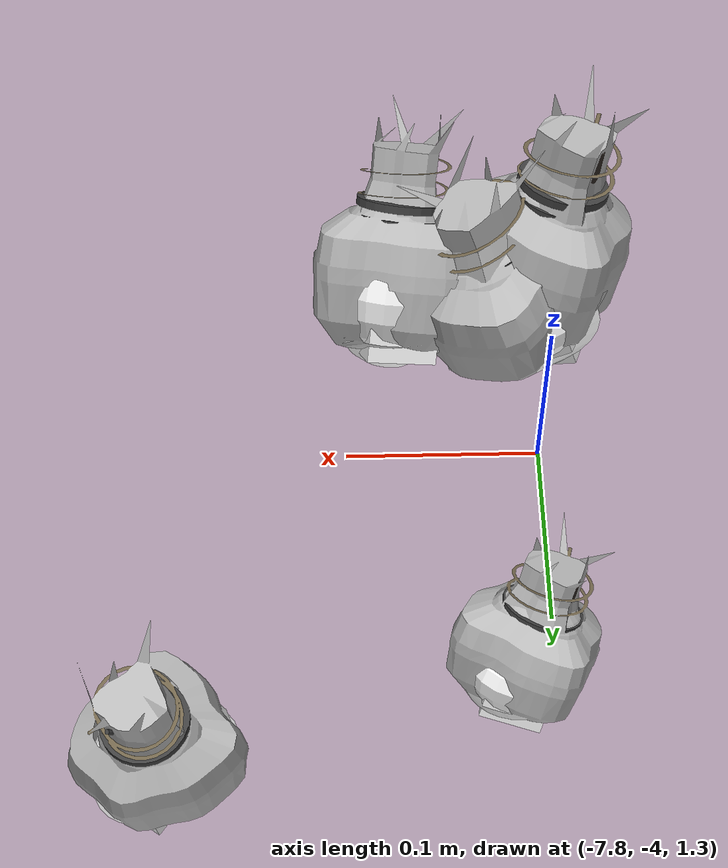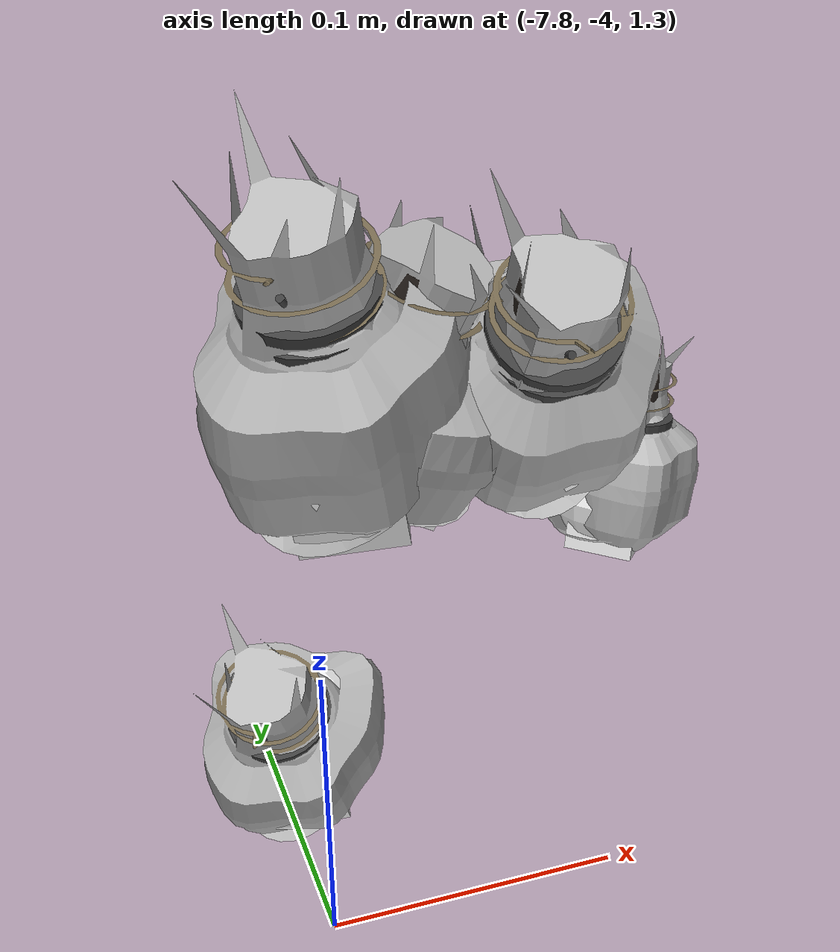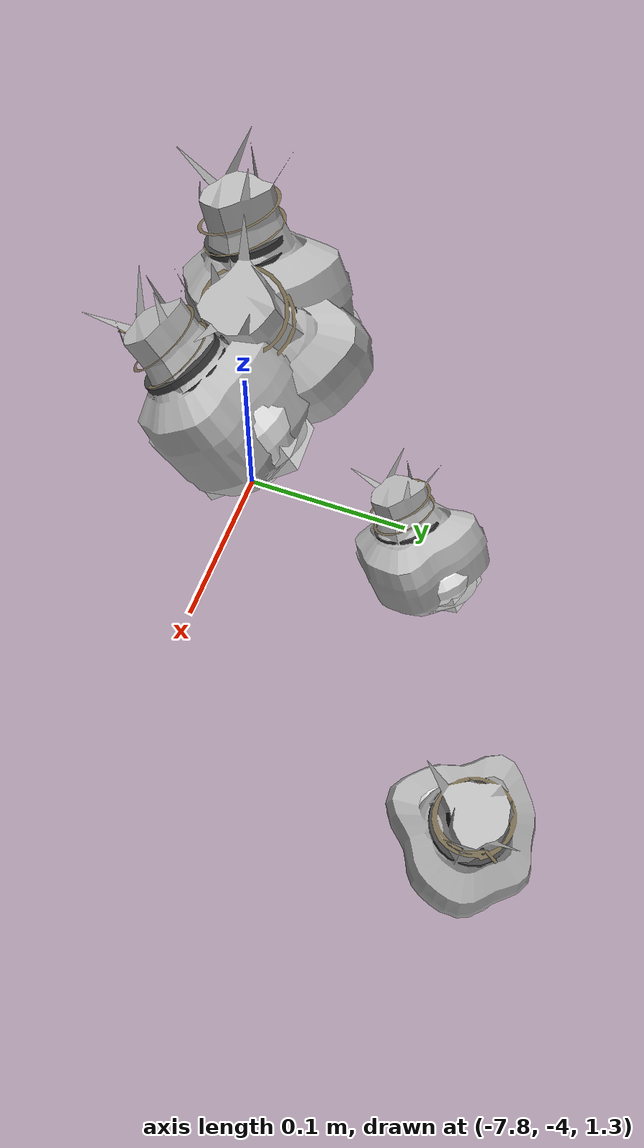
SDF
<sdf version="1.11">
 <world name="peach_orchard">
  <model name="ground">
   <static>true</static>
   <link name="link">
    <visual name="soil">
     <geometry><plane><normal>0 0 1</normal><size>32 22</size></plane></geometry>
     <material>
      <ambient>1 1 1 1</ambient>
      <diffuse>1 1 1 1</diffuse>
      <specular>0.1 0.1 0.1 1</specular>
      <pbr>
       <metal>
        <albedo_map>textures/soil_albedo.png</albedo_map>
        <normal_map type="tangent">textures/soil_normal.png</normal_map>
        <roughness>0.95</roughness>
        <metalness>0</metalness>
       </metal>
      </pbr>
     </material>
    </visual>
    <collision name="c_soil">
     <geometry><plane><normal>0 0 1</normal><size>32 22</size></plane></geometry>
    </collision>
   </link>
  </model>
  <model name="peach_tree_r0_t1_02">
   <pose>-7.61461 -3.8122 1.31483 0 0.154217 0.551246</pose>
   <static>true</static>
   <link name="bag">
    <visual name="bag_mesh">
     <pose>0 0 0.0423351 0 0 0</pose>
     <geometry>
      <mesh><uri>model://peach_sim/meshes/bagged_peach.glb</uri><scale>0.947025 1.03277 0.962162</scale></mesh>
     </geometry>
    </visual>
    <visual name="body">
     <pose>0 0 0.0243351 0 0 0</pose>
     <geometry><ellipsoid><radii>0.0355134 0.0268521 0.026282</radii></ellipsoid></geometry>
     <material>
      <ambient>1 1 1 1</ambient>
      <diffuse>1 1 1 1</diffuse>
      <specular>0.1 0.1 0.1 1</specular>
      <pbr>
       <metal>
        <albedo_map>textures/paper_bag_albedo.png</albedo_map>
        <normal_map type="tangent">textures/paper_bag_normal.png</normal_map>
        <roughness>0.72</roughness>
        <metalness>0</metalness>
       </metal>
      </pbr>
     </material>
    </visual>
    <visual name="bottom_fold">
     <pose>0 0 0.012 0 0 0.35</pose>
     <geometry><box><size>0.0550458 0.0308799 0.022</size></box></geometry>
     <material>
      <ambient>1 1 1 1</ambient>
      <diffuse>1 1 1 1</diffuse>
      <specular>0.1 0.1 0.1 1</specular>
      <pbr>
       <metal>
        <albedo_map>textures/paper_bag_albedo.png</albedo_map>
        <normal_map type="tangent">textures/paper_bag_normal.png</normal_map>
        <roughness>0.8</roughness>
        <metalness>0</metalness>
       </metal>
      </pbr>
     </material>
    </visual>
    <visual name="fruit">
     <pose>0 0 0.0172455 0 0 0</pose>
     <geometry><sphere><radius>0.0241753</radius></sphere></geometry>
     <material>
      <ambient>1 1 1 1</ambient>
      <diffuse>1 1 1 1</diffuse>
      <specular>0.1 0.1 0.1 1</specular>
      <pbr>
       <metal>
        <albedo_map>textures/fruit_skin_albedo.png</albedo_map>
        <normal_map type="tangent">textures/fruit_skin_normal.png</normal_map>
        <roughness>0.55</roughness>
        <metalness>0</metalness>
       </metal>
      </pbr>
     </material>
    </visual>
    <visual name="neck">
     <pose>0 0 0.0576703 0 0 0</pose>
     <geometry><cylinder><radius>0.013</radius><length>0.018</length></cylinder></geometry>
     <material>
      <ambient>1 1 1 1</ambient>
      <diffuse>1 1 1 1</diffuse>
      <specular>0.1 0.1 0.1 1</specular>
      <pbr>
       <metal>
        <albedo_map>textures/paper_bag_albedo.png</albedo_map>
        <normal_map type="tangent">textures/paper_bag_normal.png</normal_map>
        <roughness>0.75</roughness>
        <metalness>0</metalness>
       </metal>
      </pbr>
     </material>
    </visual>
    <visual name="gather">
     <pose>0 0 0.0386703 0 0 0</pose>
     <geometry><cylinder><radius>0.019</radius><length>0.02</length></cylinder></geometry>
     <material>
      <ambient>1 1 1 1</ambient>
      <diffuse>1 1 1 1</diffuse>
      <specular>0.1 0.1 0.1 1</specular>
      <pbr>
       <metal>
        <albedo_map>textures/paper_bag_albedo.png</albedo_map>
        <normal_map type="tangent">textures/paper_bag_normal.png</normal_map>
        <roughness>0.8</roughness>
        <metalness>0</metalness>
       </metal>
      </pbr>
     </material>
    </visual>
    <visual name="inner_paper">
     <pose>0 0 0.0626703 0 0 0</pose>
     <geometry><cylinder><radius>0.01</radius><length>0.008</length></cylinder></geometry>
     <material>
      <ambient>0.180392 0.14902 0.133333 1</ambient>
      <diffuse>0.180392 0.14902 0.133333 1</diffuse>
      <specular>0.1 0.1 0.1 1</specular>
     </material>
    </visual>
    <visual name="wire_0">
     <pose>0 0 0.0526703 0 0 0</pose>
     <geometry><cylinder><radius>0.0205</radius><length>0.0035</length></cylinder></geometry>
     <material>
      <ambient>0.25 0.25 0.25 1</ambient>
      <diffuse>0.25 0.25 0.25 1</diffuse>
      <specular>0.1 0.1 0.1 1</specular>
     </material>
    </visual>
    <visual name="wire_1">
     <pose>0 0 0.0596703 0 0 0</pose>
     <geometry><cylinder><radius>0.0205</radius><length>0.0035</length></cylinder></geometry>
     <material>
      <ambient>0.25 0.25 0.25 1</ambient>
      <diffuse>0.25 0.25 0.25 1</diffuse>
      <specular>0.1 0.1 0.1 1</specular>
     </material>
    </visual>
    <visual name="wire_tail">
     <pose>0.01 0 0.0606703 0 0.521618 0</pose>
     <geometry><cylinder><radius>0.0012</radius><length>0.026</length></cylinder></geometry>
     <material>
      <ambient>0.25 0.25 0.25 1</ambient>
      <diffuse>0.25 0.25 0.25 1</diffuse>
      <specular>0.1 0.1 0.1 1</specular>
     </material>
    </visual>
    <collision name="c_body">
     <pose>0 0 0.0243351 0 0 0</pose>
     <geometry><cylinder><radius>0.0355134</radius><length>0.0486703</length></cylinder></geometry>
    </collision>
   </link>
  </model>
  <model name="peach_tree_r0_t1_04">
   <pose>-7.78 -3.9591 1.45 0 0.428255 -0.6571</pose>
   <static>true</static>
   <link name="bag">
    <visual name="bag_mesh">
     <pose>0 0 0.0392287 0 0 -0</pose>
     <geometry>
      <mesh><uri>model://peach_sim/meshes/bagged_peach.glb</uri><scale>1.05888 1.28388 0.891562</scale></mesh>
     </geometry>
    </visual>
    <visual name="body">
     <pose>0 0 0.0212287 0 0 0</pose>
     <geometry><ellipsoid><radii>0.0397079 0.0333808 0.022927</radii></ellipsoid></geometry>
     <material>
      <ambient>1 1 1 1</ambient>
      <diffuse>1 1 1 1</diffuse>
      <specular>0.1 0.1 0.1 1</specular>
      <pbr>
       <metal>
        <albedo_map>textures/paper_bag_albedo.png</albedo_map>
        <normal_map type="tangent">textures/paper_bag_normal.png</normal_map>
        <roughness>0.72</roughness>
        <metalness>0</metalness>
       </metal>
      </pbr>
     </material>
    </visual>
    <visual name="bottom_fold">
     <pose>0 0 0.012 0 0 0.35</pose>
     <geometry><box><size>0.0615473 0.0383879 0.022</size></box></geometry>
     <material>
      <ambient>1 1 1 1</ambient>
      <diffuse>1 1 1 1</diffuse>
      <specular>0.1 0.1 0.1 1</specular>
      <pbr>
       <metal>
        <albedo_map>textures/paper_bag_albedo.png</albedo_map>
        <normal_map type="tangent">textures/paper_bag_normal.png</normal_map>
        <roughness>0.8</roughness>
        <metalness>0</metalness>
       </metal>
      </pbr>
     </material>
    </visual>
    <visual name="fruit">
     <pose>0 0 0.020392 0 0 0</pose>
     <geometry><sphere><radius>0.0274477</radius></sphere></geometry>
     <material>
      <ambient>1 1 1 1</ambient>
      <diffuse>1 1 1 1</diffuse>
      <specular>0.1 0.1 0.1 1</specular>
      <pbr>
       <metal>
        <albedo_map>textures/fruit_skin_albedo.png</albedo_map>
        <normal_map type="tangent">textures/fruit_skin_normal.png</normal_map>
        <roughness>0.55</roughness>
        <metalness>0</metalness>
       </metal>
      </pbr>
     </material>
    </visual>
    <visual name="neck">
     <pose>0 0 0.0514575 0 0 0</pose>
     <geometry><cylinder><radius>0.013</radius><length>0.018</length></cylinder></geometry>
     <material>
      <ambient>1 1 1 1</ambient>
      <diffuse>1 1 1 1</diffuse>
      <specular>0.1 0.1 0.1 1</specular>
      <pbr>
       <metal>
        <albedo_map>textures/paper_bag_albedo.png</albedo_map>
        <normal_map type="tangent">textures/paper_bag_normal.png</normal_map>
        <roughness>0.75</roughness>
        <metalness>0</metalness>
       </metal>
      </pbr>
     </material>
    </visual>
    <visual name="gather">
     <pose>0 0 0.0324575 0 0 0</pose>
     <geometry><cylinder><radius>0.019</radius><length>0.02</length></cylinder></geometry>
     <material>
      <ambient>1 1 1 1</ambient>
      <diffuse>1 1 1 1</diffuse>
      <specular>0.1 0.1 0.1 1</specular>
      <pbr>
       <metal>
        <albedo_map>textures/paper_bag_albedo.png</albedo_map>
        <normal_map type="tangent">textures/paper_bag_normal.png</normal_map>
        <roughness>0.8</roughness>
        <metalness>0</metalness>
       </metal>
      </pbr>
     </material>
    </visual>
    <visual name="inner_paper">
     <pose>0 0 0.0564575 0 0 0</pose>
     <geometry><cylinder><radius>0.01</radius><length>0.008</length></cylinder></geometry>
     <material>
      <ambient>0.180392 0.14902 0.133333 1</ambient>
      <diffuse>0.180392 0.14902 0.133333 1</diffuse>
      <specular>0.1 0.1 0.1 1</specular>
     </material>
    </visual>
    <visual name="wire_0">
     <pose>0 0 0.0464575 0 0 0</pose>
     <geometry><cylinder><radius>0.0205</radius><length>0.0035</length></cylinder></geometry>
     <material>
      <ambient>0.25 0.25 0.25 1</ambient>
      <diffuse>0.25 0.25 0.25 1</diffuse>
      <specular>0.1 0.1 0.1 1</specular>
     </material>
    </visual>
    <visual name="wire_1">
     <pose>0 0 0.0534575 0 0 0</pose>
     <geometry><cylinder><radius>0.0205</radius><length>0.0035</length></cylinder></geometry>
     <material>
      <ambient>0.25 0.25 0.25 1</ambient>
      <diffuse>0.25 0.25 0.25 1</diffuse>
      <specular>0.1 0.1 0.1 1</specular>
     </material>
    </visual>
    <visual name="wire_tail">
     <pose>0.01 0 0.0544575 0 0.521618 0</pose>
     <geometry><cylinder><radius>0.0012</radius><length>0.026</length></cylinder></geometry>
     <material>
      <ambient>0.25 0.25 0.25 1</ambient>
      <diffuse>0.25 0.25 0.25 1</diffuse>
      <specular>0.1 0.1 0.1 1</specular>
     </material>
    </visual>
    <collision name="c_body">
     <pose>0 0 0.0212287 0 0 0</pose>
     <geometry><cylinder><radius>0.0397079</radius><length>0.0424575</length></cylinder></geometry>
    </collision>
   </link>
  </model>
  <model name="peach_tree_r0_t1_05">
   <pose>-7.78 -3.96973 1.45 0 0.362802 -2.18268</pose>
   <static>true</static>
   <link name="bag">
    <visual name="bag_mesh">
     <pose>0 0 0.0496651 0 0 -0</pose>
     <geometry>
      <mesh><uri>model://peach_sim/meshes/bagged_peach.glb</uri><scale>1.03511 1.10832 1.12875</scale></mesh>
     </geometry>
    </visual>
    <visual name="body">
     <pose>0 0 0.0316651 0 0 0</pose>
     <geometry><ellipsoid><radii>0.0388168 0.0288163 0.0341983</radii></ellipsoid></geometry>
     <material>
      <ambient>1 1 1 1</ambient>
      <diffuse>1 1 1 1</diffuse>
      <specular>0.1 0.1 0.1 1</specular>
      <pbr>
       <metal>
        <albedo_map>textures/paper_bag_albedo.png</albedo_map>
        <normal_map type="tangent">textures/paper_bag_normal.png</normal_map>
        <roughness>0.72</roughness>
        <metalness>0</metalness>
       </metal>
      </pbr>
     </material>
    </visual>
    <visual name="bottom_fold">
     <pose>0 0 0.012 0 0 0.35</pose>
     <geometry><box><size>0.0601661 0.0331387 0.022</size></box></geometry>
     <material>
      <ambient>1 1 1 1</ambient>
      <diffuse>1 1 1 1</diffuse>
      <specular>0.1 0.1 0.1 1</specular>
      <pbr>
       <metal>
        <albedo_map>textures/paper_bag_albedo.png</albedo_map>
        <normal_map type="tangent">textures/paper_bag_normal.png</normal_map>
        <roughness>0.8</roughness>
        <metalness>0</metalness>
       </metal>
      </pbr>
     </material>
    </visual>
    <visual name="fruit">
     <pose>0 0 0.0191701 0 0 0</pose>
     <geometry><sphere><radius>0.0261769</radius></sphere></geometry>
     <material>
      <ambient>1 1 1 1</ambient>
      <diffuse>1 1 1 1</diffuse>
      <specular>0.1 0.1 0.1 1</specular>
      <pbr>
       <metal>
        <albedo_map>textures/fruit_skin_albedo.png</albedo_map>
        <normal_map type="tangent">textures/fruit_skin_normal.png</normal_map>
        <roughness>0.55</roughness>
        <metalness>0</metalness>
       </metal>
      </pbr>
     </material>
    </visual>
    <visual name="neck">
     <pose>0 0 0.0723302 0 0 0</pose>
     <geometry><cylinder><radius>0.013</radius><length>0.018</length></cylinder></geometry>
     <material>
      <ambient>1 1 1 1</ambient>
      <diffuse>1 1 1 1</diffuse>
      <specular>0.1 0.1 0.1 1</specular>
      <pbr>
       <metal>
        <albedo_map>textures/paper_bag_albedo.png</albedo_map>
        <normal_map type="tangent">textures/paper_bag_normal.png</normal_map>
        <roughness>0.75</roughness>
        <metalness>0</metalness>
       </metal>
      </pbr>
     </material>
    </visual>
    <visual name="gather">
     <pose>0 0 0.0533302 0 0 0</pose>
     <geometry><cylinder><radius>0.019</radius><length>0.02</length></cylinder></geometry>
     <material>
      <ambient>1 1 1 1</ambient>
      <diffuse>1 1 1 1</diffuse>
      <specular>0.1 0.1 0.1 1</specular>
      <pbr>
       <metal>
        <albedo_map>textures/paper_bag_albedo.png</albedo_map>
        <normal_map type="tangent">textures/paper_bag_normal.png</normal_map>
        <roughness>0.8</roughness>
        <metalness>0</metalness>
       </metal>
      </pbr>
     </material>
    </visual>
    <visual name="inner_paper">
     <pose>0 0 0.0773302 0 0 0</pose>
     <geometry><cylinder><radius>0.01</radius><length>0.008</length></cylinder></geometry>
     <material>
      <ambient>0.180392 0.14902 0.133333 1</ambient>
      <diffuse>0.180392 0.14902 0.133333 1</diffuse>
      <specular>0.1 0.1 0.1 1</specular>
     </material>
    </visual>
    <visual name="wire_0">
     <pose>0 0 0.0673302 0 0 0</pose>
     <geometry><cylinder><radius>0.0205</radius><length>0.0035</length></cylinder></geometry>
     <material>
      <ambient>0.25 0.25 0.25 1</ambient>
      <diffuse>0.25 0.25 0.25 1</diffuse>
      <specular>0.1 0.1 0.1 1</specular>
     </material>
    </visual>
    <visual name="wire_1">
     <pose>0 0 0.0743302 0 0 0</pose>
     <geometry><cylinder><radius>0.0205</radius><length>0.0035</length></cylinder></geometry>
     <material>
      <ambient>0.25 0.25 0.25 1</ambient>
      <diffuse>0.25 0.25 0.25 1</diffuse>
      <specular>0.1 0.1 0.1 1</specular>
     </material>
    </visual>
    <visual name="wire_tail">
     <pose>0.01 0 0.0753302 0 0.521618 0</pose>
     <geometry><cylinder><radius>0.0012</radius><length>0.026</length></cylinder></geometry>
     <material>
      <ambient>0.25 0.25 0.25 1</ambient>
      <diffuse>0.25 0.25 0.25 1</diffuse>
      <specular>0.1 0.1 0.1 1</specular>
     </material>
    </visual>
    <collision name="c_body">
     <pose>0 0 0.0316651 0 0 0</pose>
     <geometry><cylinder><radius>0.0388168</radius><length>0.0633302</length></cylinder></geometry>
    </collision>
   </link>
  </model>
  <model name="peach_tree_r0_t1_06">
   <pose>-7.7176 -3.95447 1.45 0 0.676206 -1.74732</pose>
   <static>true</static>
   <link name="bag">
    <visual name="bag_mesh">
     <pose>0 0 0.0464911 0 0 -0</pose>
     <geometry>
      <mesh><uri>model://peach_sim/meshes/bagged_peach.glb</uri><scale>0.920681 1.04821 1.05661</scale></mesh>
     </geometry>
    </visual>
    <visual name="body">
     <pose>0 0 0.0284911 0 0 0</pose>
     <geometry><ellipsoid><radii>0.0345255 0.0272535 0.0307703</radii></ellipsoid></geometry>
     <material>
      <ambient>1 1 1 1</ambient>
      <diffuse>1 1 1 1</diffuse>
      <specular>0.1 0.1 0.1 1</specular>
      <pbr>
       <metal>
        <albedo_map>textures/paper_bag_albedo.png</albedo_map>
        <normal_map type="tangent">textures/paper_bag_normal.png</normal_map>
        <roughness>0.72</roughness>
        <metalness>0</metalness>
       </metal>
      </pbr>
     </material>
    </visual>
    <visual name="bottom_fold">
     <pose>0 0 0.012 0 0 0.35</pose>
     <geometry><box><size>0.0535146 0.0313415 0.022</size></box></geometry>
     <material>
      <ambient>1 1 1 1</ambient>
      <diffuse>1 1 1 1</diffuse>
      <specular>0.1 0.1 0.1 1</specular>
      <pbr>
       <metal>
        <albedo_map>textures/paper_bag_albedo.png</albedo_map>
        <normal_map type="tangent">textures/paper_bag_normal.png</normal_map>
        <roughness>0.8</roughness>
        <metalness>0</metalness>
       </metal>
      </pbr>
     </material>
    </visual>
    <visual name="fruit">
     <pose>0 0 0.0201771 0 0 0</pose>
     <geometry><sphere><radius>0.0272242</radius></sphere></geometry>
     <material>
      <ambient>1 1 1 1</ambient>
      <diffuse>1 1 1 1</diffuse>
      <specular>0.1 0.1 0.1 1</specular>
      <pbr>
       <metal>
        <albedo_map>textures/fruit_skin_albedo.png</albedo_map>
        <normal_map type="tangent">textures/fruit_skin_normal.png</normal_map>
        <roughness>0.55</roughness>
        <metalness>0</metalness>
       </metal>
      </pbr>
     </material>
    </visual>
    <visual name="neck">
     <pose>0 0 0.0659821 0 0 0</pose>
     <geometry><cylinder><radius>0.013</radius><length>0.018</length></cylinder></geometry>
     <material>
      <ambient>1 1 1 1</ambient>
      <diffuse>1 1 1 1</diffuse>
      <specular>0.1 0.1 0.1 1</specular>
      <pbr>
       <metal>
        <albedo_map>textures/paper_bag_albedo.png</albedo_map>
        <normal_map type="tangent">textures/paper_bag_normal.png</normal_map>
        <roughness>0.75</roughness>
        <metalness>0</metalness>
       </metal>
      </pbr>
     </material>
    </visual>
    <visual name="gather">
     <pose>0 0 0.0469821 0 0 0</pose>
     <geometry><cylinder><radius>0.019</radius><length>0.02</length></cylinder></geometry>
     <material>
      <ambient>1 1 1 1</ambient>
      <diffuse>1 1 1 1</diffuse>
      <specular>0.1 0.1 0.1 1</specular>
      <pbr>
       <metal>
        <albedo_map>textures/paper_bag_albedo.png</albedo_map>
        <normal_map type="tangent">textures/paper_bag_normal.png</normal_map>
        <roughness>0.8</roughness>
        <metalness>0</metalness>
       </metal>
      </pbr>
     </material>
    </visual>
    <visual name="inner_paper">
     <pose>0 0 0.0709821 0 0 0</pose>
     <geometry><cylinder><radius>0.01</radius><length>0.008</length></cylinder></geometry>
     <material>
      <ambient>0.180392 0.14902 0.133333 1</ambient>
      <diffuse>0.180392 0.14902 0.133333 1</diffuse>
      <specular>0.1 0.1 0.1 1</specular>
     </material>
    </visual>
    <visual name="wire_0">
     <pose>0 0 0.0609821 0 0 0</pose>
     <geometry><cylinder><radius>0.0205</radius><length>0.0035</length></cylinder></geometry>
     <material>
      <ambient>0.25 0.25 0.25 1</ambient>
      <diffuse>0.25 0.25 0.25 1</diffuse>
      <specular>0.1 0.1 0.1 1</specular>
     </material>
    </visual>
    <visual name="wire_1">
     <pose>0 0 0.0679821 0 0 0</pose>
     <geometry><cylinder><radius>0.0205</radius><length>0.0035</length></cylinder></geometry>
     <material>
      <ambient>0.25 0.25 0.25 1</ambient>
      <diffuse>0.25 0.25 0.25 1</diffuse>
      <specular>0.1 0.1 0.1 1</specular>
     </material>
    </visual>
    <visual name="wire_tail">
     <pose>0.01 0 0.0689821 0 0.521618 0</pose>
     <geometry><cylinder><radius>0.0012</radius><length>0.026</length></cylinder></geometry>
     <material>
      <ambient>0.25 0.25 0.25 1</ambient>
      <diffuse>0.25 0.25 0.25 1</diffuse>
      <specular>0.1 0.1 0.1 1</specular>
     </material>
    </visual>
    <collision name="c_body">
     <pose>0 0 0.0284911 0 0 0</pose>
     <geometry><cylinder><radius>0.0345255</radius><length>0.0569821</length></cylinder></geometry>
    </collision>
   </link>
  </model>
  <model name="peach_tree_r0_t1_09">
   <pose>-7.78 -3.87379 1.27 0 0.539699 -2.11747</pose>
   <static>true</static>
   <link name="bag">
    <visual name="bag_mesh">
     <pose>0 0 0.0386124 0 0 -0</pose>
     <geometry>
      <mesh><uri>model://peach_sim/meshes/bagged_peach.glb</uri><scale>0.97134 1.04266 0.877555</scale></mesh>
     </geometry>
    </visual>
    <visual name="body">
     <pose>0 0 0.0206124 0 0 0</pose>
     <geometry><ellipsoid><radii>0.0364253 0.0271091 0.0222614</radii></ellipsoid></geometry>
     <material>
      <ambient>1 1 1 1</ambient>
      <diffuse>1 1 1 1</diffuse>
      <specular>0.1 0.1 0.1 1</specular>
      <pbr>
       <metal>
        <albedo_map>textures/paper_bag_albedo.png</albedo_map>
        <normal_map type="tangent">textures/paper_bag_normal.png</normal_map>
        <roughness>0.72</roughness>
        <metalness>0</metalness>
       </metal>
      </pbr>
     </material>
    </visual>
    <visual name="bottom_fold">
     <pose>0 0 0.012 0 0 0.35</pose>
     <geometry><box><size>0.0564592 0.0311754 0.022</size></box></geometry>
     <material>
      <ambient>1 1 1 1</ambient>
      <diffuse>1 1 1 1</diffuse>
      <specular>0.1 0.1 0.1 1</specular>
      <pbr>
       <metal>
        <albedo_map>textures/paper_bag_albedo.png</albedo_map>
        <normal_map type="tangent">textures/paper_bag_normal.png</normal_map>
        <roughness>0.8</roughness>
        <metalness>0</metalness>
       </metal>
      </pbr>
     </material>
    </visual>
    <visual name="fruit">
     <pose>0 0 0.0207028 0 0 0</pose>
     <geometry><sphere><radius>0.0277709</radius></sphere></geometry>
     <material>
      <ambient>1 1 1 1</ambient>
      <diffuse>1 1 1 1</diffuse>
      <specular>0.1 0.1 0.1 1</specular>
      <pbr>
       <metal>
        <albedo_map>textures/fruit_skin_albedo.png</albedo_map>
        <normal_map type="tangent">textures/fruit_skin_normal.png</normal_map>
        <roughness>0.55</roughness>
        <metalness>0</metalness>
       </metal>
      </pbr>
     </material>
    </visual>
    <visual name="neck">
     <pose>0 0 0.0502248 0 0 0</pose>
     <geometry><cylinder><radius>0.013</radius><length>0.018</length></cylinder></geometry>
     <material>
      <ambient>1 1 1 1</ambient>
      <diffuse>1 1 1 1</diffuse>
      <specular>0.1 0.1 0.1 1</specular>
      <pbr>
       <metal>
        <albedo_map>textures/paper_bag_albedo.png</albedo_map>
        <normal_map type="tangent">textures/paper_bag_normal.png</normal_map>
        <roughness>0.75</roughness>
        <metalness>0</metalness>
       </metal>
      </pbr>
     </material>
    </visual>
    <visual name="gather">
     <pose>0 0 0.0312248 0 0 0</pose>
     <geometry><cylinder><radius>0.019</radius><length>0.02</length></cylinder></geometry>
     <material>
      <ambient>1 1 1 1</ambient>
      <diffuse>1 1 1 1</diffuse>
      <specular>0.1 0.1 0.1 1</specular>
      <pbr>
       <metal>
        <albedo_map>textures/paper_bag_albedo.png</albedo_map>
        <normal_map type="tangent">textures/paper_bag_normal.png</normal_map>
        <roughness>0.8</roughness>
        <metalness>0</metalness>
       </metal>
      </pbr>
     </material>
    </visual>
    <visual name="inner_paper">
     <pose>0 0 0.0552248 0 0 0</pose>
     <geometry><cylinder><radius>0.01</radius><length>0.008</length></cylinder></geometry>
     <material>
      <ambient>0.180392 0.14902 0.133333 1</ambient>
      <diffuse>0.180392 0.14902 0.133333 1</diffuse>
      <specular>0.1 0.1 0.1 1</specular>
     </material>
    </visual>
    <visual name="wire_0">
     <pose>0 0 0.0452248 0 0 0</pose>
     <geometry><cylinder><radius>0.0205</radius><length>0.0035</length></cylinder></geometry>
     <material>
      <ambient>0.25 0.25 0.25 1</ambient>
      <diffuse>0.25 0.25 0.25 1</diffuse>
      <specular>0.1 0.1 0.1 1</specular>
     </material>
    </visual>
    <visual name="wire_1">
     <pose>0 0 0.0522248 0 0 0</pose>
     <geometry><cylinder><radius>0.0205</radius><length>0.0035</length></cylinder></geometry>
     <material>
      <ambient>0.25 0.25 0.25 1</ambient>
      <diffuse>0.25 0.25 0.25 1</diffuse>
      <specular>0.1 0.1 0.1 1</specular>
     </material>
    </visual>
    <visual name="wire_tail">
     <pose>0.01 0 0.0532248 0 0.521618 0</pose>
     <geometry><cylinder><radius>0.0012</radius><length>0.026</length></cylinder></geometry>
     <material>
      <ambient>0.25 0.25 0.25 1</ambient>
      <diffuse>0.25 0.25 0.25 1</diffuse>
      <specular>0.1 0.1 0.1 1</specular>
     </material>
    </visual>
    <collision name="c_body">
     <pose>0 0 0.0206124 0 0 0</pose>
     <geometry><cylinder><radius>0.0364253</radius><length>0.0412248</length></cylinder></geometry>
    </collision>
   </link>
  </model>
 </world>
</sdf>
